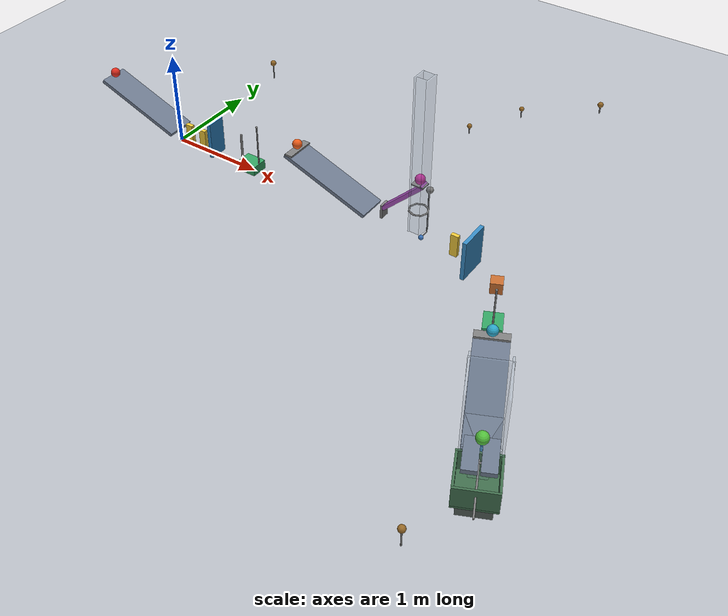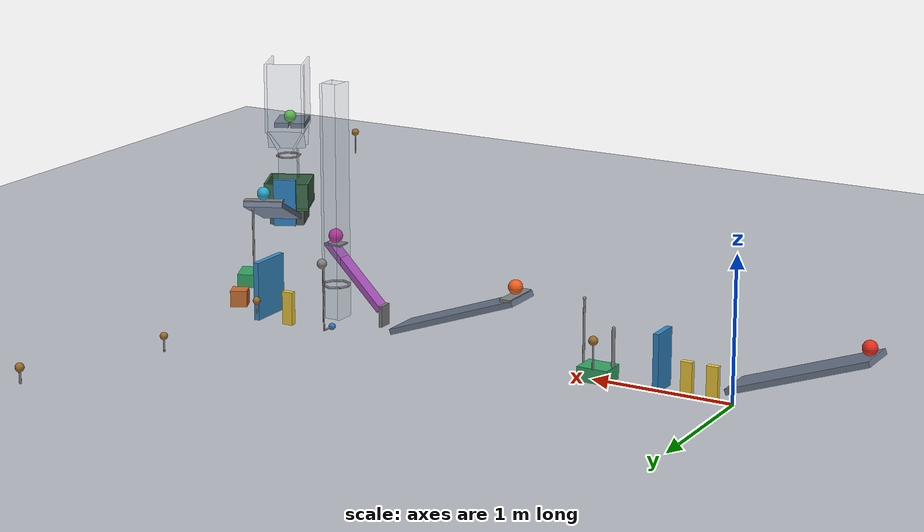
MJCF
<mujoco model="passive_chain_reaction">
  <compiler angle="degree" eulerseq="XYZ" autolimits="true"/>
  <!-- Global contact override: sliding friction 0.70; damping approximates restitution 0.05. -->
  <option timestep="0.002" gravity="0 0 -9.81" solver="Newton" iterations="100" tolerance="1e-10" cone="elliptic" o_solref="0.006 0.690107" o_solimp="0.95 0.99 0.001" o_friction="0.70 0.70 0.005 0.001 0.001">
    <flag override="enable"/>
  </option>
  <size njmax="2000" nconmax="500"/>

  <worldbody>
    <light name="main_light" pos="2 -3 7" dir="0 0 -1"/>
    <camera name="overview" pos="2 -7 5" xyaxes="1 0 0 0 0.6 0.8" fovy="50"/>
    <geom name="floor" type="plane" pos="0 0 0" size="8 6 0.1" friction="0.70 0.005 0.001" rgba="0.72 0.74 0.77 1"/>

    <!-- Ramp1 top endpoints are (-0.939693, 0, 0.492020) and (0, 0, 0.15). -->
    <body name="ramp1" pos="-0.476686 0 0.302216" euler="0 20 0">
      <geom name="ramp1_surface" type="box" size="0.50 0.15 0.02" rgba="0.43 0.48 0.56 1"/>
    </body>
    <body name="ball1" pos="-0.894401 0 0.528741">
      <freejoint name="ball1_free"/>
      <geom name="ball1_sphere" type="sphere" size="0.05" mass="0.20" condim="6" rgba="0.90 0.18 0.12 1"/>
    </body>
    <body name="domino1" pos="0.14 0 0.12">
      <freejoint name="domino1_free"/>
      <geom name="domino1_box" type="box" size="0.04 0.02 0.12" mass="0.25" rgba="0.94 0.79 0.23 1"/>
    </body>
    <body name="domino2" pos="0.32 0 0.12">
      <freejoint name="domino2_free"/>
      <geom name="domino2_box" type="box" size="0.04 0.02 0.12" mass="0.25" rgba="0.94 0.79 0.23 1"/>
    </body>

    <body name="flap1" pos="0.50 0 0.42">
      <joint name="flap1_hinge" type="hinge" axis="0 -1 0" damping="0.04" range="0 65" solreflimit="0.004 1"/>
      <geom name="flap1_panel" type="box" pos="0 0 -0.20" size="0.02 0.10 0.20" mass="0.30" rgba="0.18 0.52 0.77 1"/>
    </body>

    <!-- Passive, initially inverted counterweights supply gravity assistance after impact. -->
    <body name="flap1_gravity_assist" pos="0.50 1.0 0.45">
      <joint name="flap1_assist_hinge" type="hinge" axis="0 -1 0" damping="0.04" range="0 65" solreflimit="0.004 1"/>
      <geom name="flap1_assist_arm" type="capsule" fromto="0 0 0 0 0 0.18" size="0.006" mass="0.02" contype="0" conaffinity="0"/>
      <geom name="flap1_assist_weight" type="sphere" pos="0 0 0.18" size="0.03" mass="0.98" contype="0" conaffinity="0" rgba="0.60 0.42 0.16 1"/>
    </body>

    <body name="cart1" pos="0.96 0 0.055">
      <inertial pos="0 0 0" mass="0.50" diaginertia="0.001766667 0.002433333 0.003366667"/>
      <joint name="cart1_slide" type="slide" axis="1 0 0" damping="0.20" range="0 0.47" solreflimit="0.004 1"/>
      <geom name="cart1_box" type="box" size="0.11 0.09 0.05" density="0" rgba="0.20 0.64 0.39 1"/>
      <geom name="cart1_rear_striker" type="capsule" fromto="-0.11 0 0.06 -0.11 0 0.32" size="0.012" density="0"/>
      <geom name="cart1_front_post" type="capsule" fromto="0.105 0 0.06 0.105 0 0.492" size="0.008" density="0"/>
      <geom name="cart1_ball_pusher" type="sphere" pos="0.105 0 0.492" size="0.012" density="0"/>
    </body>

    <!-- The horizontal release ledge prevents ball2 rolling before cart1 arrives. -->
    <body name="ramp2" pos="1.994715 0 0.302216" euler="0 20 0">
      <geom name="ramp2_surface" type="box" size="0.50 0.15 0.02" rgba="0.43 0.48 0.56 1"/>
      <geom name="ramp2_release_ledge" type="box" pos="-0.455725 0 0.030772" euler="0 -20 0" size="0.04 0.15 0.01"/>
    </body>
    <body name="ball2" pos="1.577 0 0.547">
      <freejoint name="ball2_free"/>
      <geom name="ball2_sphere" type="sphere" size="0.05" mass="0.20" condim="6" rgba="0.95 0.37 0.10 1"/>
    </body>

    <!-- Initial lever inclination is 45 degrees; joint travel raises its right end. -->
    <body name="lever1" pos="2.825533 0 0.442132" euler="0 -45 0">
      <inertial pos="0 0 0" mass="0.50" diaginertia="0.000483333 0.015066667 0.015416667"/>
      <joint name="lever1_hinge" type="hinge" axis="0 -1 0" damping="0.04" range="0 45" solreflimit="0.004 1"/>
      <geom name="lever1_beam" type="box" size="0.30 0.05 0.02" density="0" contype="2" conaffinity="1" rgba="0.66 0.32 0.73 1"/>
      <geom name="lever1_impact_vane" type="box" pos="-0.335355 0 -0.021213" euler="0 45 0" size="0.012 0.05 0.075" density="0"/>
      <geom name="lever1_launch_cradle" type="box" pos="0.260402 0 0.030401" euler="0 45 0" size="0.065 0.05 0.006" density="0"/>
    </body>
    <body name="lever1_gravity_assist" pos="2.825533 1.2 0.50">
      <joint name="lever1_assist_hinge" type="hinge" axis="0 -1 0" damping="0.04" range="0 45" solreflimit="0.004 1"/>
      <geom name="lever1_assist_arm" type="capsule" fromto="0 0 0 0 0 0.08" size="0.006" mass="0.02" contype="0" conaffinity="0"/>
      <geom name="lever1_assist_weight" type="sphere" pos="0 0 0.08" size="0.025" mass="4.98" contype="0" conaffinity="0" rgba="0.60 0.42 0.16 1"/>
    </body>
    <body name="ball3" pos="2.988168 0 0.703761">
      <freejoint name="ball3_free"/>
      <geom name="ball3_sphere" type="sphere" size="0.05" mass="0.20" contype="4" conaffinity="5" condim="6" rgba="0.78 0.16 0.61 1"/>
    </body>

    <!-- Guide collision masks allow the lever to pass while keeping ball3 vertical. -->
    <body name="ball3_vertical_guide" pos="2.988168 0 0">
      <geom name="ball3_guide_xminus" type="box" pos="-0.0605 0 0.95" size="0.0075 0.075 0.83" contype="4" conaffinity="0" rgba="0.62 0.70 0.78 0.20"/>
      <geom name="ball3_guide_xplus" type="box" pos="0.0605 0 0.95" size="0.0075 0.075 0.83" contype="4" conaffinity="0" rgba="0.62 0.70 0.78 0.20"/>
      <geom name="ball3_guide_yminus" type="box" pos="0 -0.0605 0.95" size="0.053 0.0075 0.83" contype="4" conaffinity="0" rgba="0.62 0.70 0.78 0.20"/>
      <geom name="ball3_guide_yplus" type="box" pos="0 0.0605 0.95" size="0.053 0.0075 0.83" contype="4" conaffinity="0" rgba="0.62 0.70 0.78 0.20"/>
    </body>

    <!-- Capsule polygons have a minimum clear diameter of 0.16 m. -->
    <body name="ring1" pos="2.988168 0 0.353761">
      <geom name="ring1_segment0" type="capsule" fromto="0.095249 0 0 0.067351 0.067351 0" size="0.008"/>
      <geom name="ring1_segment1" type="capsule" fromto="0.067351 0.067351 0 0 0.095249 0" size="0.008"/>
      <geom name="ring1_segment2" type="capsule" fromto="0 0.095249 0 -0.067351 0.067351 0" size="0.008"/>
      <geom name="ring1_segment3" type="capsule" fromto="-0.067351 0.067351 0 -0.095249 0 0" size="0.008"/>
      <geom name="ring1_segment4" type="capsule" fromto="-0.095249 0 0 -0.067351 -0.067351 0" size="0.008"/>
      <geom name="ring1_segment5" type="capsule" fromto="-0.067351 -0.067351 0 0 -0.095249 0" size="0.008"/>
      <geom name="ring1_segment6" type="capsule" fromto="0 -0.095249 0 0.067351 -0.067351 0" size="0.008"/>
      <geom name="ring1_segment7" type="capsule" fromto="0.067351 -0.067351 0 0.095249 0 0" size="0.008"/>
    </body>

    <!-- Offset impact on the bob converts vertical ball motion into pendulum swing. -->
    <body name="pendulum1" pos="3.028168 0 0.540318">
      <joint name="pendulum1_hinge" type="hinge" axis="0 -1 0" damping="0.04" range="0 40" solreflimit="0.004 1"/>
      <geom name="pendulum1_hub" type="sphere" pos="0 0.12 -0.015" size="0.035" mass="0.25"/>
      <geom name="pendulum1_rod" type="capsule" fromto="0 0.105 -0.03 0 0.105 -0.50" size="0.006" mass="0.05"/>
      <geom name="pendulum1_bob_arm" type="capsule" fromto="0 0.105 -0.50 0 0 -0.50" size="0.006" mass="0.005"/>
      <geom name="pendulum1_bob" type="sphere" pos="0 0 -0.50" size="0.025" mass="0.045" rgba="0.22 0.45 0.73 1"/>
    </body>
    <body name="pendulum1_gravity_assist" pos="3.05 1.9 0.40">
      <joint name="pendulum1_assist_hinge" type="hinge" axis="0 -1 0" damping="0.04" range="0 40" solreflimit="0.004 1"/>
      <geom name="pendulum1_assist_arm" type="capsule" fromto="0 0 0 0 0 0.10" size="0.006" mass="0.02" contype="0" conaffinity="0"/>
      <geom name="pendulum1_assist_weight" type="sphere" pos="0 0 0.10" size="0.025" mass="0.98" contype="0" conaffinity="0" rgba="0.60 0.42 0.16 1"/>
    </body>

    <!-- Domino contact occurs at approximately 0.32 m of bob arc, before the 40-degree stop. -->
    <body name="domino3" pos="3.391766 0 0.12">
      <freejoint name="domino3_free"/>
      <geom name="domino3_box" type="box" size="0.04 0.02 0.12" mass="0.25" rgba="0.94 0.79 0.23 1"/>
    </body>
    <body name="door1" pos="3.631766 -0.27 0.005">
      <joint name="door1_hinge" type="hinge" axis="0 0 -1" damping="0.04" range="0 70" solreflimit="0.004 1"/>
      <geom name="door1_panel" type="box" pos="0 0.16 0.21" size="0.02 0.16 0.21" mass="0.45" rgba="0.22 0.55 0.77 1"/>
    </body>
    <body name="door1_gravity_assist" pos="3.63 2.6 0.30">
      <joint name="door1_assist_hinge" type="hinge" axis="0 -1 0" damping="0.04" range="0 70" solreflimit="0.004 1"/>
      <geom name="door1_assist_arm" type="capsule" fromto="0 0 0 0 0 0.10" size="0.008" mass="0.02" contype="0" conaffinity="0"/>
      <geom name="door1_assist_weight" type="sphere" pos="0 0 0.10" size="0.03" mass="7.98" contype="0" conaffinity="0" rgba="0.60 0.42 0.16 1"/>
    </body>

    <body name="block1" pos="3.955595 -0.207267 0.06" euler="0 0 -65">
      <freejoint name="block1_free"/>
      <geom name="block1_cube" type="box" size="0.06 0.06 0.06" mass="0.35" rgba="0.78 0.43 0.19 1"/>
    </body>
    <body name="cart2" pos="4.175356 -0.678547 0.055" euler="0 0 -65">
      <inertial pos="0 0 0" mass="0.50" diaginertia="0.001766667 0.002433333 0.003366667"/>
      <joint name="cart2_slide" type="slide" axis="1 0 0" damping="0.20" range="0 0.44" solreflimit="0.004 1"/>
      <geom name="cart2_box" type="box" size="0.11 0.09 0.05" density="0" rgba="0.20 0.64 0.39 1"/>
      <geom name="cart2_front_post" type="capsule" fromto="0.105 0 0.06 0.105 0 0.492" size="0.008" density="0"/>
      <geom name="cart2_ball_pusher" type="sphere" pos="0.105 0 0.492" size="0.012" density="0"/>
    </body>

    <body name="ramp3" pos="4.599963 -1.589135 0.302216" euler="0 20 -65">
      <geom name="ramp3_surface" type="box" size="0.50 0.15 0.02" rgba="0.43 0.48 0.56 1"/>
      <geom name="ramp3_release_ledge" type="box" pos="-0.455725 0 0.030772" euler="0 -20 0" size="0.04 0.15 0.01"/>
    </body>
    <body name="ball4" pos="4.423433 -1.210550 0.547">
      <freejoint name="ball4_free"/>
      <geom name="ball4_sphere" type="sphere" size="0.05" mass="0.20" condim="6" rgba="0.17 0.66 0.80 1"/>
    </body>

    <body name="flap2" pos="4.852136 -2.129916 0.40" euler="0 0 -65">
      <inertial pos="0 0 -0.19" mass="0.28" diaginertia="0.004125333 0.003406667 0.000793333"/>
      <joint name="flap2_hinge" type="hinge" axis="0 -1 0" damping="0.04" range="0 60" solreflimit="0.004 1"/>
      <geom name="flap2_panel" type="box" pos="0 0 -0.19" size="0.02 0.09 0.19" density="0" rgba="0.18 0.52 0.77 1"/>
      <geom name="flap2_striker_stem" type="capsule" fromto="0 0 0 0 0 -0.121410" size="0.008" density="0"/>
      <geom name="flap2_striker_arm" type="capsule" fromto="0 0 -0.121410 0.589711 0 -0.121410" size="0.008" density="0"/>
      <geom name="flap2_striker_tip" type="sphere" pos="0.589711 0 -0.121410" size="0.008" density="0"/>
    </body>
    <body name="flap2_gravity_assist" pos="4.85 -3.2 0.40">
      <joint name="flap2_assist_hinge" type="hinge" axis="0 -1 0" damping="0.04" range="0 60" solreflimit="0.004 1"/>
      <geom name="flap2_assist_arm" type="capsule" fromto="0 0 0 0 0 0.18" size="0.006" mass="0.02" contype="0" conaffinity="0"/>
      <geom name="flap2_assist_weight" type="sphere" pos="0 0 0.18" size="0.03" mass="0.98" contype="0" conaffinity="0" rgba="0.60 0.42 0.16 1"/>
    </body>

    <!-- A narrow central shelf slot clears the striker; ball5 bridges the slot. -->
    <body name="shelf1" pos="5.042314 -2.537755 0.78" euler="0 0 -65">
      <geom name="shelf1_left_half" type="box" pos="0 0.0675 0" size="0.15 0.0575 0.02" rgba="0.43 0.48 0.56 1"/>
      <geom name="shelf1_right_half" type="box" pos="0 -0.0675 0" size="0.15 0.0575 0.02" rgba="0.43 0.48 0.56 1"/>
    </body>
    <body name="ball5" pos="5.000052 -2.447124 0.848990">
      <freejoint name="ball5_free"/>
      <geom name="ball5_sphere" type="sphere" size="0.05" mass="0.20" conaffinity="5" condim="6" rgba="0.33 0.76 0.24 1"/>
    </body>

    <!-- A passive funnel removes the horizontal velocity imparted by the striker. -->
    <body name="ball5_capture_guide" pos="4.949338 -2.338367 0" euler="0 0 -65">
      <geom name="ball5_funnel_xplus" type="box" pos="0.104536 0 0.704" euler="0 29.248826 0" size="0.0075 0.15 0.085959" contype="4" conaffinity="0" rgba="0.62 0.70 0.78 0.25"/>
      <geom name="ball5_funnel_xminus" type="box" pos="-0.104536 0 0.704" euler="0 -29.248826 0" size="0.0075 0.15 0.085959" contype="4" conaffinity="0" rgba="0.62 0.70 0.78 0.25"/>
      <geom name="ball5_funnel_yplus" type="box" pos="0 0.104536 0.704" euler="-29.248826 0 0" size="0.15 0.0075 0.085959" contype="4" conaffinity="0" rgba="0.62 0.70 0.78 0.25"/>
      <geom name="ball5_funnel_yminus" type="box" pos="0 -0.104536 0.704" euler="29.248826 0 0" size="0.15 0.0075 0.085959" contype="4" conaffinity="0" rgba="0.62 0.70 0.78 0.25"/>
      <geom name="ball5_guide_xminus" type="box" pos="-0.0605 0 0.49" size="0.0075 0.075 0.139" contype="4" conaffinity="0" rgba="0.62 0.70 0.78 0.20"/>
      <geom name="ball5_guide_xplus" type="box" pos="0.0605 0 0.49" size="0.0075 0.075 0.139" contype="4" conaffinity="0" rgba="0.62 0.70 0.78 0.20"/>
      <geom name="ball5_guide_yminus" type="box" pos="0 -0.0605 0.49" size="0.053 0.0075 0.139" contype="4" conaffinity="0" rgba="0.62 0.70 0.78 0.20"/>
      <geom name="ball5_guide_yplus" type="box" pos="0 0.0605 0.49" size="0.053 0.0075 0.139" contype="4" conaffinity="0" rgba="0.62 0.70 0.78 0.20"/>
      <geom name="ball5_capture_backstop" type="box" pos="-0.1475 0 1.054" size="0.0075 0.16 0.275" contype="4" conaffinity="0" rgba="0.62 0.70 0.78 0.20"/>
      <geom name="ball5_capture_sideplus" type="box" pos="0 0.1475 1.054" size="0.20 0.0075 0.275" contype="4" conaffinity="0" rgba="0.62 0.70 0.78 0.20"/>
      <geom name="ball5_capture_sideminus" type="box" pos="0 -0.1475 1.054" size="0.20 0.0075 0.275" contype="4" conaffinity="0" rgba="0.62 0.70 0.78 0.20"/>
    </body>

    <body name="ring2" pos="4.949338 -2.338367 0.548990">
      <geom name="ring2_segment0" type="capsule" fromto="0.095249 0 0 0.067351 0.067351 0" size="0.008"/>
      <geom name="ring2_segment1" type="capsule" fromto="0.067351 0.067351 0 0 0.095249 0" size="0.008"/>
      <geom name="ring2_segment2" type="capsule" fromto="0 0.095249 0 -0.067351 0.067351 0" size="0.008"/>
      <geom name="ring2_segment3" type="capsule" fromto="-0.067351 0.067351 0 -0.095249 0 0" size="0.008"/>
      <geom name="ring2_segment4" type="capsule" fromto="-0.095249 0 0 -0.067351 -0.067351 0" size="0.008"/>
      <geom name="ring2_segment5" type="capsule" fromto="-0.067351 -0.067351 0 0 -0.095249 0" size="0.008"/>
      <geom name="ring2_segment6" type="capsule" fromto="0 -0.095249 0 0.067351 -0.067351 0" size="0.008"/>
      <geom name="ring2_segment7" type="capsule" fromto="0.067351 -0.067351 0 0.095249 0 0" size="0.008"/>
    </body>

    <!-- Bin inner footprint 0.32 by 0.32; wall height 0.20 and thickness 0.02. -->
    <body name="bin1" pos="4.949338 -2.338367 0.148990" euler="0 0 -65">
      <geom name="bin1_base" type="box" pos="0 0 -0.01" size="0.18 0.18 0.01" rgba="0.25 0.43 0.30 1"/>
      <geom name="bin1_wall_xplus" type="box" pos="0.17 0 0.10" size="0.01 0.18 0.10" rgba="0.25 0.43 0.30 1"/>
      <geom name="bin1_wall_xminus" type="box" pos="-0.17 0 0.10" size="0.01 0.18 0.10" rgba="0.25 0.43 0.30 1"/>
      <geom name="bin1_wall_yplus" type="box" pos="0 0.17 0.10" size="0.16 0.01 0.10" rgba="0.25 0.43 0.30 1"/>
      <geom name="bin1_wall_yminus" type="box" pos="0 -0.17 0.10" size="0.16 0.01 0.10" rgba="0.25 0.43 0.30 1"/>
      <geom name="bin1_pedestal" type="box" pos="0 0 -0.084495" size="0.14 0.14 0.064495" rgba="0.32 0.36 0.34 1"/>
    </body>
  </worldbody>

  <!-- Ideal passive gear couplings; there are no actuators or externally set controls. -->
  <equality>
    <joint name="flap1_assist_coupling" joint1="flap1_hinge" joint2="flap1_assist_hinge" polycoef="0 1 0 0 0" solref="0.004 1"/>
    <joint name="lever1_assist_coupling" joint1="lever1_hinge" joint2="lever1_assist_hinge" polycoef="0 1 0 0 0" solref="0.004 1"/>
    <joint name="pendulum1_assist_coupling" joint1="pendulum1_hinge" joint2="pendulum1_assist_hinge" polycoef="0 1 0 0 0" solref="0.004 1"/>
    <joint name="door1_assist_coupling" joint1="door1_hinge" joint2="door1_assist_hinge" polycoef="0 1 0 0 0" solref="0.004 1"/>
    <joint name="flap2_assist_coupling" joint1="flap2_hinge" joint2="flap2_assist_hinge" polycoef="0 1 0 0 0" solref="0.004 1"/>
  </equality>

  <!-- Omitted keyframe positions use qpos0; omitted velocities are all zero. -->
  <keyframe>
    <key name="start"/>
  </keyframe>
</mujoco>
